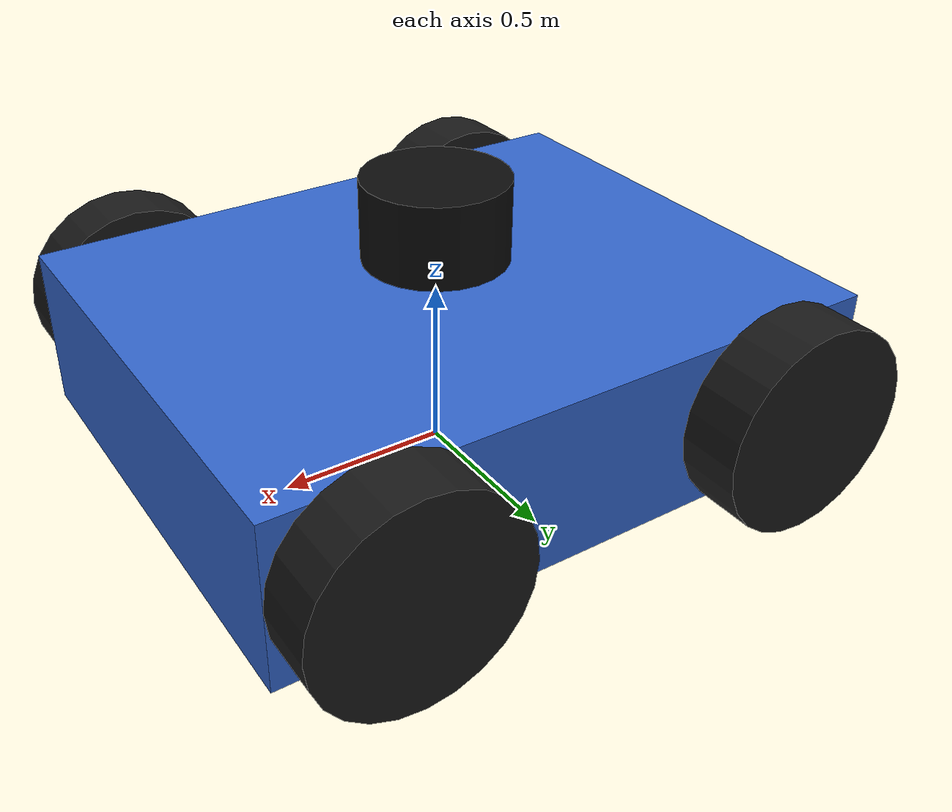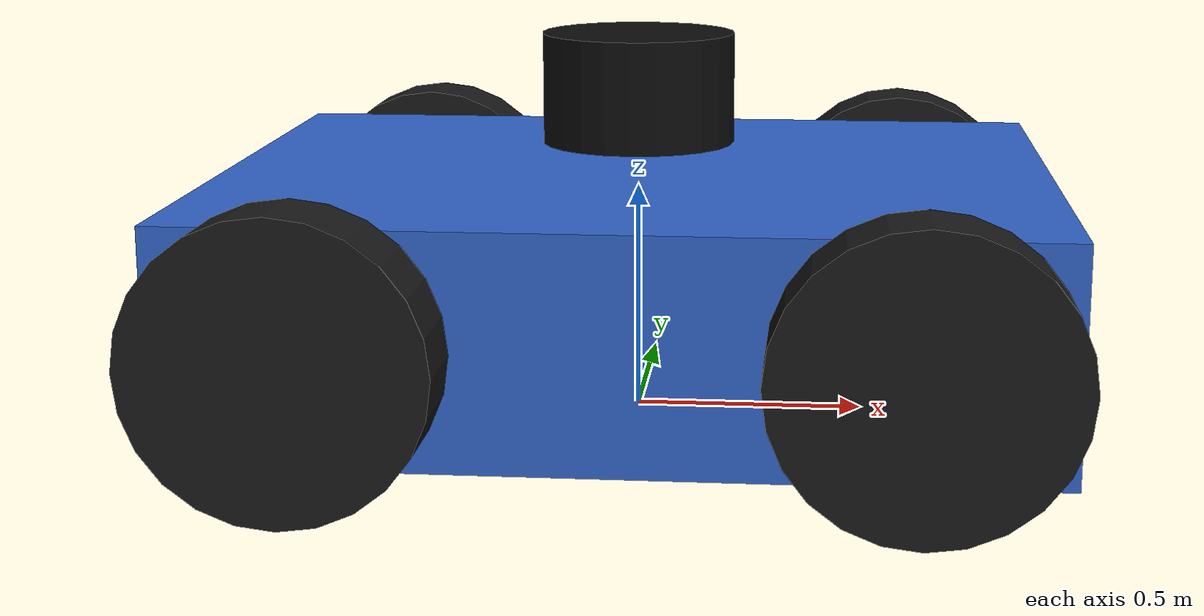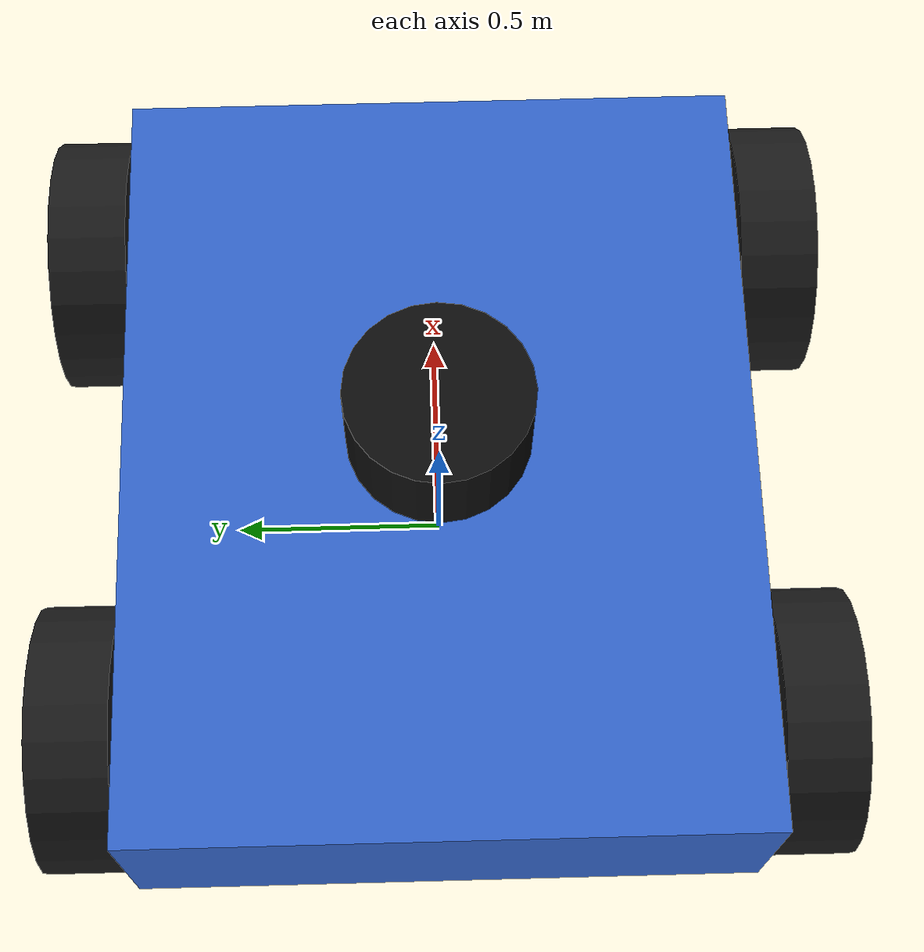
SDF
<?xml version="1.0" ?>
<sdf version="1.9">
  <model name="holonomic_bot" canonical_link="base_link">
    <self_collide>false</self_collide>
    <static>false</static>

    <!-- ================= CHASSIS ================= -->
    <!-- Base link frame is at ground level. The chassis geometry is centered at z=0.30 m. -->
    <link name="base_link">
      <pose>0 0 0 0 0 0</pose>

      <inertial>
        <pose>0 0 0.30 0 0 0</pose>
        <mass>540.0</mass>
        <inertia>
          <ixx>103.68</ixx>
          <ixy>0</ixy>
          <ixz>0</ixz>
          <iyy>156.168</iyy>
          <iyz>0</iyz>
          <izz>239.112</izz>
        </inertia>
      </inertial>

      <visual name="base_visual">
        <pose>0 0 0.30 0 0 0</pose>
        <geometry>
          <box>
            <size>1.80 1.44 0.48</size>
          </box>
        </geometry>
        <material>
          <ambient>0.2 0.4 0.8 1</ambient>
          <diffuse>0.2 0.4 0.8 1</diffuse>
          <specular>0.05 0.05 0.05 1</specular>
        </material>
      </visual>

      <collision name="base_collision">
        <pose>0 0 0.30 0 0 0</pose>
        <geometry>
          <box>
            <size>1.80 1.44 0.48</size>
          </box>
        </geometry>
      </collision>

      <!-- ================= LIDAR ================= -->
      <visual name="lidar_visual">
        <pose>0 0 0.72 0 0 0</pose>
        <geometry>
          <cylinder>
            <radius>0.21</radius>
            <length>0.24</length>
          </cylinder>
        </geometry>
        <material>
          <ambient>0.05 0.05 0.05 1</ambient>
          <diffuse>0.05 0.05 0.05 1</diffuse>
        </material>
      </visual>

      <collision name="lidar_collision">
        <pose>0 0 0.72 0 0 0</pose>
        <geometry>
          <cylinder>
            <radius>0.21</radius>
            <length>0.24</length>
          </cylinder>
        </geometry>
      </collision>

      <sensor name="lidar_sensor" type="gpu_lidar">
        <pose relative_to="lidar_link">0 0 0 0 0 0</pose>
        <topic>/model/holonomic_bot/scan</topic>
        <gz_frame_id>lidar_link</gz_frame_id>
        <update_rate>10</update_rate>
        <always_on>true</always_on>
        <visualize>true</visualize>

        <lidar>
          <scan>
            <horizontal>
              <samples>360</samples>
              <resolution>1</resolution>
              <min_angle>-3.14159265</min_angle>
              <max_angle>3.14159265</max_angle>
            </horizontal>
          </scan>

          <range>
            <min>0.12</min>
            <max>12.0</max>
            <resolution>0.01</resolution>
          </range>

          <noise>
            <type>gaussian</type>
            <mean>0.0</mean>
            <stddev>0.01</stddev>
          </noise>
        </lidar>
      </sensor>

      <!-- ================= IMU ================= -->
      <sensor name="imu_sensor" type="imu">
        <pose relative_to="imu_link">0 0 0 0 0 0</pose>
        <topic>/model/holonomic_bot/imu</topic>
        <gz_frame_id>imu_link</gz_frame_id>
        <update_rate>100</update_rate>
        <always_on>true</always_on>
        <visualize>false</visualize>
        <gravity>true</gravity>
      </sensor>
    </link>

    <!-- Sensor frames used by the lidar / IMU messages and ROS TF. -->
    <frame name="lidar_link" attached_to="base_link">
      <pose>0 0 0.72 0 0 0</pose>
    </frame>

    <frame name="imu_link" attached_to="base_link">
      <pose>0 0 0.30 0 0 0</pose>
    </frame>

    <!-- ================= WHEELS ================= -->

    <link name="front_left_wheel">
      <pose>0.60 0.81 0.30 1.57079632679 0 0</pose>
      <inertial>
        <mass>32.4</mass>
        <!-- Cylinder principal axis is local Z. -->
        <inertia>
          <ixx>0.81648</ixx>
          <ixy>0</ixy>
          <ixz>0</ixz>
          <iyy>0.81648</iyy>
          <iyz>0</iyz>
          <izz>1.458</izz>
        </inertia>
      </inertial>
      <visual name="front_left_wheel_visual">
        <geometry>
          <cylinder>
            <radius>0.30</radius>
            <length>0.18</length>
          </cylinder>
        </geometry>
        <material>
          <ambient>0.1 0.1 0.1 1</ambient>
          <diffuse>0.1 0.1 0.1 1</diffuse>
        </material>
      </visual>
      <collision name="front_left_wheel_collision">
        <geometry>
          <cylinder>
            <radius>0.30</radius>
            <length>0.18</length>
          </cylinder>
        </geometry>
        <surface>
          <friction>
            <ode>
              <mu>1.0</mu>
              <mu2>0.0</mu2>
              <fdir1 expressed_in="base_link">1 -1 0</fdir1>
              <slip1>0.01</slip1>
              <slip2>0.01</slip2>
            </ode>
          </friction>
          <contact>
            <ode>
              <kp>1e6</kp>
              <kd>100.0</kd>
              <max_vel>1.0</max_vel>
              <min_depth>0.0</min_depth>
            </ode>
          </contact>
        </surface>
      </collision>
    </link>

    <joint name="front_left_wheel_joint" type="revolute">
      <pose relative_to="base_link">0.60 0.81 0.30 0 0 0</pose>
      <parent>base_link</parent>
      <child>front_left_wheel</child>
      <axis>
        <xyz>0 1 0</xyz>
        <limit>
          <lower>-1e16</lower>
          <upper>1e16</upper>
        </limit>
        <dynamics>
          <damping>0.05</damping>
        </dynamics>
      </axis>
    </joint>

    <link name="front_right_wheel">
      <pose>0.60 -0.81 0.30 1.57079632679 0 0</pose>
      <inertial>
        <mass>32.4</mass>
        <inertia>
          <ixx>0.81648</ixx>
          <ixy>0</ixy>
          <ixz>0</ixz>
          <iyy>0.81648</iyy>
          <iyz>0</iyz>
          <izz>1.458</izz>
        </inertia>
      </inertial>
      <visual name="front_right_wheel_visual">
        <geometry>
          <cylinder>
            <radius>0.30</radius>
            <length>0.18</length>
          </cylinder>
        </geometry>
        <material>
          <ambient>0.1 0.1 0.1 1</ambient>
          <diffuse>0.1 0.1 0.1 1</diffuse>
        </material>
      </visual>
      <collision name="front_right_wheel_collision">
        <geometry>
          <cylinder>
            <radius>0.30</radius>
            <length>0.18</length>
          </cylinder>
        </geometry>
        <surface>
          <friction>
            <ode>
              <mu>1.0</mu>
              <mu2>0.0</mu2>
              <fdir1 expressed_in="base_link">1 1 0</fdir1>
              <slip1>0.01</slip1>
              <slip2>0.01</slip2>
            </ode>
          </friction>
          <contact>
            <ode>
              <kp>1e6</kp>
              <kd>100.0</kd>
              <max_vel>1.0</max_vel>
              <min_depth>0.0</min_depth>
            </ode>
          </contact>
        </surface>
      </collision>
    </link>

    <joint name="front_right_wheel_joint" type="revolute">
      <pose relative_to="base_link">0.60 -0.81 0.30 0 0 0</pose>
      <parent>base_link</parent>
      <child>front_right_wheel</child>
      <axis>
        <xyz>0 1 0</xyz>
        <limit>
          <lower>-1e16</lower>
          <upper>1e16</upper>
        </limit>
        <dynamics>
          <damping>0.05</damping>
        </dynamics>
      </axis>
    </joint>

    <link name="rear_left_wheel">
      <pose>-0.60 0.81 0.30 1.57079632679 0 0</pose>
      <inertial>
        <mass>32.4</mass>
        <inertia>
          <ixx>0.81648</ixx>
          <ixy>0</ixy>
          <ixz>0</ixz>
          <iyy>0.81648</iyy>
          <iyz>0</iyz>
          <izz>1.458</izz>
        </inertia>
      </inertial>
      <visual name="rear_left_wheel_visual">
        <geometry>
          <cylinder>
            <radius>0.30</radius>
            <length>0.18</length>
          </cylinder>
        </geometry>
        <material>
          <ambient>0.1 0.1 0.1 1</ambient>
          <diffuse>0.1 0.1 0.1 1</diffuse>
        </material>
      </visual>
      <collision name="rear_left_wheel_collision">
        <geometry>
          <cylinder>
            <radius>0.30</radius>
            <length>0.18</length>
          </cylinder>
        </geometry>
        <surface>
          <friction>
            <ode>
              <mu>1.0</mu>
              <mu2>0.0</mu2>
              <fdir1 expressed_in="base_link">1 1 0</fdir1>
              <slip1>0.01</slip1>
              <slip2>0.01</slip2>
            </ode>
          </friction>
          <contact>
            <ode>
              <kp>1e6</kp>
              <kd>100.0</kd>
              <max_vel>1.0</max_vel>
              <min_depth>0.0</min_depth>
            </ode>
          </contact>
        </surface>
      </collision>
    </link>

    <joint name="rear_left_wheel_joint" type="revolute">
      <pose relative_to="base_link">-0.60 0.81 0.30 0 0 0</pose>
      <parent>base_link</parent>
      <child>rear_left_wheel</child>
      <axis>
        <xyz>0 1 0</xyz>
        <limit>
          <lower>-1e16</lower>
          <upper>1e16</upper>
        </limit>
        <dynamics>
          <damping>0.05</damping>
        </dynamics>
      </axis>
    </joint>

    <link name="rear_right_wheel">
      <pose>-0.60 -0.81 0.30 1.57079632679 0 0</pose>
      <inertial>
        <mass>32.4</mass>
        <inertia>
          <ixx>0.81648</ixx>
          <ixy>0</ixy>
          <ixz>0</ixz>
          <iyy>0.81648</iyy>
          <iyz>0</iyz>
          <izz>1.458</izz>
        </inertia>
      </inertial>
      <visual name="rear_right_wheel_visual">
        <geometry>
          <cylinder>
            <radius>0.30</radius>
            <length>0.18</length>
          </cylinder>
        </geometry>
        <material>
          <ambient>0.1 0.1 0.1 1</ambient>
          <diffuse>0.1 0.1 0.1 1</diffuse>
        </material>
      </visual>
      <collision name="rear_right_wheel_collision">
        <geometry>
          <cylinder>
            <radius>0.30</radius>
            <length>0.18</length>
          </cylinder>
        </geometry>
        <surface>
          <friction>
            <ode>
              <mu>1.0</mu>
              <mu2>0.0</mu2>
              <fdir1 expressed_in="base_link">1 -1 0</fdir1>
              <slip1>0.01</slip1>
              <slip2>0.01</slip2>
            </ode>
          </friction>
          <contact>
            <ode>
              <kp>1e6</kp>
              <kd>100.0</kd>
              <max_vel>1.0</max_vel>
              <min_depth>0.0</min_depth>
            </ode>
          </contact>
        </surface>
      </collision>
    </link>

    <joint name="rear_right_wheel_joint" type="revolute">
      <pose relative_to="base_link">-0.60 -0.81 0.30 0 0 0</pose>
      <parent>base_link</parent>
      <child>rear_right_wheel</child>
      <axis>
        <xyz>0 1 0</xyz>
        <limit>
          <lower>-1e16</lower>
          <upper>1e16</upper>
        </limit>
        <dynamics>
          <damping>0.05</damping>
        </dynamics>
      </axis>
    </joint>

    <!-- ================= JOINT STATES ================= -->
    <plugin filename="gz-sim-joint-state-publisher-system"
            name="gz::sim::systems::JointStatePublisher">
      <topic>joint_states</topic>
      <joint_name>front_left_wheel_joint</joint_name>
      <joint_name>front_right_wheel_joint</joint_name>
      <joint_name>rear_left_wheel_joint</joint_name>
      <joint_name>rear_right_wheel_joint</joint_name>
    </plugin>

    <!-- ================= HOLONOMIC DRIVE ================= -->
    <plugin filename="gz-sim-mecanum-drive-system"
            name="gz::sim::systems::MecanumDrive">
      <front_left_joint>front_left_wheel_joint</front_left_joint>
      <front_right_joint>front_right_wheel_joint</front_right_joint>
      <back_left_joint>rear_left_wheel_joint</back_left_joint>
      <back_right_joint>rear_right_wheel_joint</back_right_joint>

      <!-- Actual centre-to-centre geometry of this 6x robot. -->
      <wheel_separation>1.62</wheel_separation>
      <wheelbase>1.20</wheelbase>
      <wheel_radius>0.30</wheel_radius>

      <min_acceleration>-5</min_acceleration>
      <max_acceleration>5</max_acceleration>
      <min_velocity>-2</min_velocity>
      <max_velocity>2</max_velocity>

      <topic>cmd_vel</topic>
      <odom_topic>odometry</odom_topic>
      <tf_topic>pose_tf</tf_topic>
      <frame_id>odom</frame_id>
      <child_frame_id>base_link</child_frame_id>
      <odom_publish_frequency>30</odom_publish_frequency>
    </plugin>

  </model>
</sdf>
